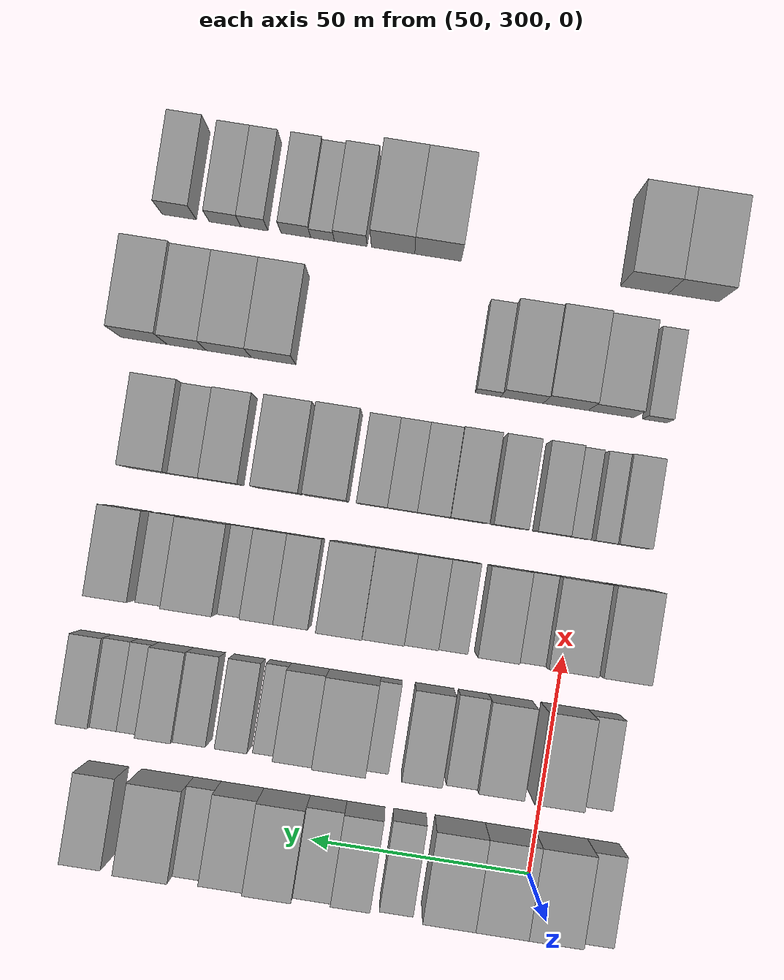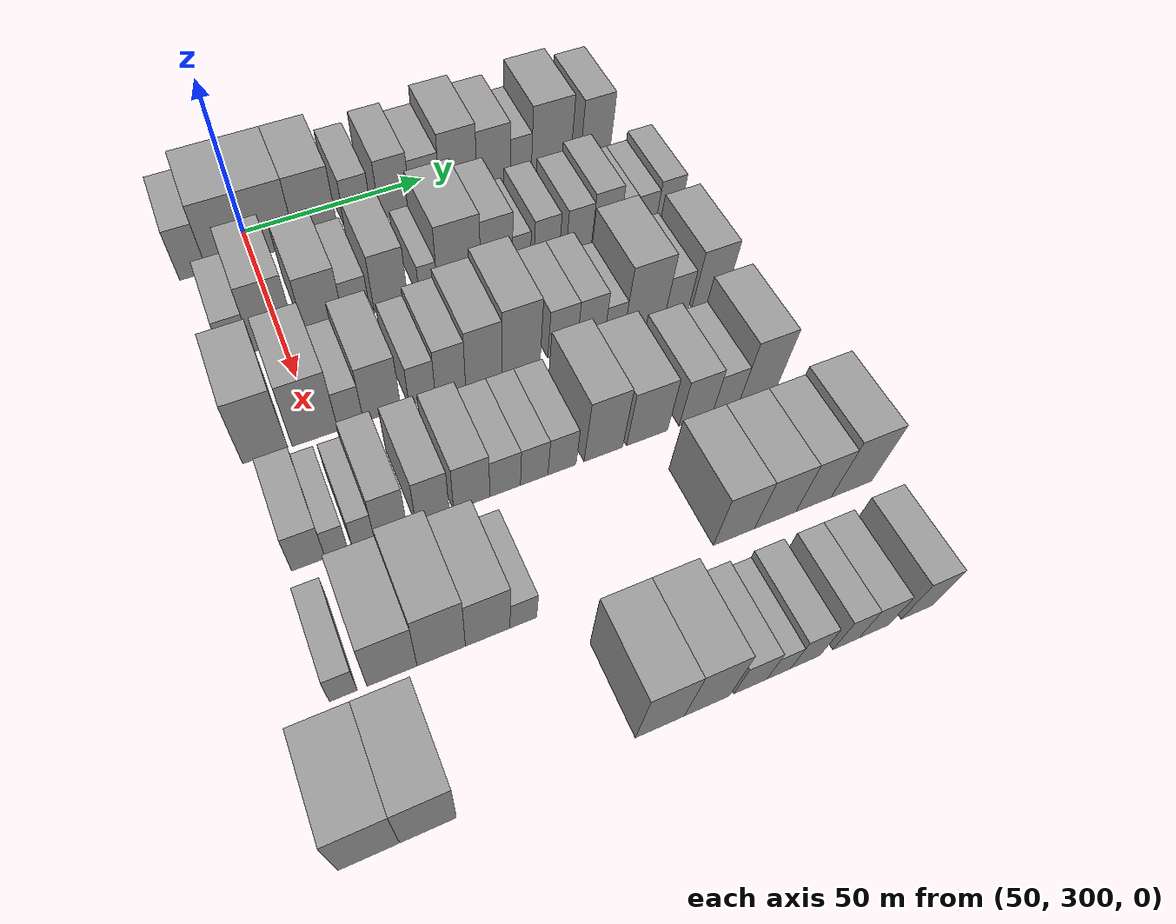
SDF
<sdf version="1.6">
 <world name="default">
  <model name="building_92">
   <static>1</static>
   <pose>50.0000 284.5388 0 0.000000 0.000000 0.000000</pose>
   <link name="link">
    <pose>0 0 9.00 0 0 0</pose>
    <collision name="collision"><geometry><box><size>20.0000 7.2180 18.0000</size></box></geometry></collision>
    <visual name="visual">
     <cast_shadows>0</cast_shadows>
     <geometry><box><size>20.0000 7.2180 18.0000</size></box></geometry>
     <material>
      <script>
       <uri>model://grey_wall/materials/scripts</uri>
       <uri>model://grey_wall/materials/textures</uri>
       <name>vrc/grey_wall</name>
      </script>
     </material>
    </visual>
   </link>
  </model>
  <model name="building_93">
   <static>1</static>
   <pose>50.0000 294.1135 0 0.000000 0.000000 0.000000</pose>
   <link name="link">
    <pose>0 0 12.00 0 0 0</pose>
    <collision name="collision"><geometry><box><size>20.0000 11.9313 24.0000</size></box></geometry></collision>
    <visual name="visual">
     <cast_shadows>0</cast_shadows>
     <geometry><box><size>20.0000 11.9313 24.0000</size></box></geometry>
     <material>
      <script>
       <uri>model://grey_wall/materials/scripts</uri>
       <uri>model://grey_wall/materials/textures</uri>
       <name>vrc/grey_wall</name>
      </script>
     </material>
    </visual>
   </link>
  </model>
  <model name="building_94">
   <static>1</static>
   <pose>50.0000 305.8453 0 0.000000 0.000000 0.000000</pose>
   <link name="link">
    <pose>0 0 12.00 0 0 0</pose>
    <collision name="collision"><geometry><box><size>20.0000 11.5323 24.0000</size></box></geometry></collision>
    <visual name="visual">
     <cast_shadows>0</cast_shadows>
     <geometry><box><size>20.0000 11.5323 24.0000</size></box></geometry>
     <material>
      <script>
       <uri>model://grey_wall/materials/scripts</uri>
       <uri>model://grey_wall/materials/textures</uri>
       <name>vrc/grey_wall</name>
      </script>
     </material>
    </visual>
   </link>
  </model>
  <model name="building_95">
   <static>1</static>
   <pose>50.0000 317.3767 0 0.000000 0.000000 0.000000</pose>
   <link name="link">
    <pose>0 0 12.00 0 0 0</pose>
    <collision name="collision"><geometry><box><size>20.0000 11.5306 24.0000</size></box></geometry></collision>
    <visual name="visual">
     <cast_shadows>0</cast_shadows>
     <geometry><box><size>20.0000 11.5306 24.0000</size></box></geometry>
     <material>
      <script>
       <uri>model://grey_wall/materials/scripts</uri>
       <uri>model://grey_wall/materials/textures</uri>
       <name>vrc/grey_wall</name>
      </script>
     </material>
    </visual>
   </link>
  </model>
  <model name="building_96">
   <static>1</static>
   <pose>50.0000 328.8717 0 0.000000 0.000000 0.000000</pose>
   <link name="link">
    <pose>0 0 9.00 0 0 0</pose>
    <collision name="collision"><geometry><box><size>20.0000 7.4594 18.0000</size></box></geometry></collision>
    <visual name="visual">
     <cast_shadows>0</cast_shadows>
     <geometry><box><size>20.0000 7.4594 18.0000</size></box></geometry>
     <material>
      <script>
       <uri>model://grey_wall/materials/scripts</uri>
       <uri>model://grey_wall/materials/textures</uri>
       <name>vrc/grey_wall</name>
      </script>
     </material>
    </visual>
   </link>
  </model>
  <model name="building_97">
   <static>1</static>
   <pose>50.0000 338.9504 0 0.000000 0.000000 0.000000</pose>
   <link name="link">
    <pose>0 0 10.50 0 0 0</pose>
    <collision name="collision"><geometry><box><size>20.0000 8.6980 21.0000</size></box></geometry></collision>
    <visual name="visual">
     <cast_shadows>0</cast_shadows>
     <geometry><box><size>20.0000 8.6980 21.0000</size></box></geometry>
     <material>
      <script>
       <uri>model://grey_wall/materials/scripts</uri>
       <uri>model://grey_wall/materials/textures</uri>
       <name>vrc/grey_wall</name>
      </script>
     </material>
    </visual>
   </link>
  </model>
  <model name="building_98">
   <static>1</static>
   <pose>50.0000 347.5077 0 0.000000 0.000000 0.000000</pose>
   <link name="link">
    <pose>0 0 9.00 0 0 0</pose>
    <collision name="collision"><geometry><box><size>20.0000 8.4166 18.0000</size></box></geometry></collision>
    <visual name="visual">
     <cast_shadows>0</cast_shadows>
     <geometry><box><size>20.0000 8.4166 18.0000</size></box></geometry>
     <material>
      <script>
       <uri>model://grey_wall/materials/scripts</uri>
       <uri>model://grey_wall/materials/textures</uri>
       <name>vrc/grey_wall</name>
      </script>
     </material>
    </visual>
   </link>
  </model>
  <model name="building_99">
   <static>1</static>
   <pose>50.0000 357.0452 0 0.000000 0.000000 0.000000</pose>
   <link name="link">
    <pose>0 0 12.00 0 0 0</pose>
    <collision name="collision"><geometry><box><size>20.0000 10.6584 24.0000</size></box></geometry></collision>
    <visual name="visual">
     <cast_shadows>0</cast_shadows>
     <geometry><box><size>20.0000 10.6584 24.0000</size></box></geometry>
     <material>
      <script>
       <uri>model://grey_wall/materials/scripts</uri>
       <uri>model://grey_wall/materials/textures</uri>
       <name>vrc/grey_wall</name>
      </script>
     </material>
    </visual>
   </link>
  </model>
  <model name="building_100">
   <static>1</static>
   <pose>50.0000 367.2842 0 0.000000 0.000000 0.000000</pose>
   <link name="link">
    <pose>0 0 10.50 0 0 0</pose>
    <collision name="collision"><geometry><box><size>20.0000 9.8195 21.0000</size></box></geometry></collision>
    <visual name="visual">
     <cast_shadows>0</cast_shadows>
     <geometry><box><size>20.0000 9.8195 21.0000</size></box></geometry>
     <material>
      <script>
       <uri>model://grey_wall/materials/scripts</uri>
       <uri>model://grey_wall/materials/textures</uri>
       <name>vrc/grey_wall</name>
      </script>
     </material>
    </visual>
   </link>
  </model>
  <model name="building_101">
   <static>1</static>
   <pose>50.0000 375.3558 0 0.000000 0.000000 0.000000</pose>
   <link name="link">
    <pose>0 0 7.50 0 0 0</pose>
    <collision name="collision"><geometry><box><size>20.0000 6.3237 15.0000</size></box></geometry></collision>
    <visual name="visual">
     <cast_shadows>0</cast_shadows>
     <geometry><box><size>20.0000 6.3237 15.0000</size></box></geometry>
     <material>
      <script>
       <uri>model://grey_wall/materials/scripts</uri>
       <uri>model://grey_wall/materials/textures</uri>
       <name>vrc/grey_wall</name>
      </script>
     </material>
    </visual>
   </link>
  </model>
  <model name="building_102">
   <static>1</static>
   <pose>50.0000 384.4923 0 0.000000 0.000000 0.000000</pose>
   <link name="link">
    <pose>0 0 12.00 0 0 0</pose>
    <collision name="collision"><geometry><box><size>20.0000 11.9492 24.0000</size></box></geometry></collision>
    <visual name="visual">
     <cast_shadows>0</cast_shadows>
     <geometry><box><size>20.0000 11.9492 24.0000</size></box></geometry>
     <material>
      <script>
       <uri>model://grey_wall/materials/scripts</uri>
       <uri>model://grey_wall/materials/textures</uri>
       <name>vrc/grey_wall</name>
      </script>
     </material>
    </visual>
   </link>
  </model>
  <model name="building_103">
   <static>1</static>
   <pose>50.0000 398.0509 0 0.000000 0.000000 0.000000</pose>
   <link name="link">
    <pose>0 0 10.50 0 0 0</pose>
    <collision name="collision"><geometry><box><size>20.0000 9.1679 21.0000</size></box></geometry></collision>
    <visual name="visual">
     <cast_shadows>0</cast_shadows>
     <geometry><box><size>20.0000 9.1679 21.0000</size></box></geometry>
     <material>
      <script>
       <uri>model://grey_wall/materials/scripts</uri>
       <uri>model://grey_wall/materials/textures</uri>
       <name>vrc/grey_wall</name>
      </script>
     </material>
    </visual>
   </link>
  </model>
  <model name="building_203">
   <static>1</static>
   <pose>79.0000 288.9813 0 0.000000 0.000000 0.000000</pose>
   <link name="link">
    <pose>0 0 7.50 0 0 0</pose>
    <collision name="collision"><geometry><box><size>20.0000 7.0840 15.0000</size></box></geometry></collision>
    <visual name="visual">
     <cast_shadows>0</cast_shadows>
     <geometry><box><size>20.0000 7.0840 15.0000</size></box></geometry>
     <material>
      <script>
       <uri>model://grey_wall/materials/scripts</uri>
       <uri>model://grey_wall/materials/textures</uri>
       <name>vrc/grey_wall</name>
      </script>
     </material>
    </visual>
   </link>
  </model>
  <model name="building_204">
   <static>1</static>
   <pose>79.0000 297.9540 0 0.000000 0.000000 0.000000</pose>
   <link name="link">
    <pose>0 0 12.00 0 0 0</pose>
    <collision name="collision"><geometry><box><size>20.0000 10.8613 24.0000</size></box></geometry></collision>
    <visual name="visual">
     <cast_shadows>0</cast_shadows>
     <geometry><box><size>20.0000 10.8613 24.0000</size></box></geometry>
     <material>
      <script>
       <uri>model://grey_wall/materials/scripts</uri>
       <uri>model://grey_wall/materials/textures</uri>
       <name>vrc/grey_wall</name>
      </script>
     </material>
    </visual>
   </link>
  </model>
  <model name="building_205">
   <static>1</static>
   <pose>79.0000 310.3971 0 0.000000 0.000000 0.000000</pose>
   <link name="link">
    <pose>0 0 10.50 0 0 0</pose>
    <collision name="collision"><geometry><box><size>20.0000 10.0249 21.0000</size></box></geometry></collision>
    <visual name="visual">
     <cast_shadows>0</cast_shadows>
     <geometry><box><size>20.0000 10.0249 21.0000</size></box></geometry>
     <material>
      <script>
       <uri>model://grey_wall/materials/scripts</uri>
       <uri>model://grey_wall/materials/textures</uri>
       <name>vrc/grey_wall</name>
      </script>
     </material>
    </visual>
   </link>
  </model>
  <model name="building_206">
   <static>1</static>
   <pose>79.0000 318.8785 0 0.000000 0.000000 0.000000</pose>
   <link name="link">
    <pose>0 0 7.50 0 0 0</pose>
    <collision name="collision"><geometry><box><size>20.0000 6.9378 15.0000</size></box></geometry></collision>
    <visual name="visual">
     <cast_shadows>0</cast_shadows>
     <geometry><box><size>20.0000 6.9378 15.0000</size></box></geometry>
     <material>
      <script>
       <uri>model://grey_wall/materials/scripts</uri>
       <uri>model://grey_wall/materials/textures</uri>
       <name>vrc/grey_wall</name>
      </script>
     </material>
    </visual>
   </link>
  </model>
  <model name="building_207">
   <static>1</static>
   <pose>79.0000 327.7746 0 0.000000 0.000000 0.000000</pose>
   <link name="link">
    <pose>0 0 10.50 0 0 0</pose>
    <collision name="collision"><geometry><box><size>20.0000 8.8544 21.0000</size></box></geometry></collision>
    <visual name="visual">
     <cast_shadows>0</cast_shadows>
     <geometry><box><size>20.0000 8.8544 21.0000</size></box></geometry>
     <material>
      <script>
       <uri>model://grey_wall/materials/scripts</uri>
       <uri>model://grey_wall/materials/textures</uri>
       <name>vrc/grey_wall</name>
      </script>
     </material>
    </visual>
   </link>
  </model>
  <model name="building_208">
   <static>1</static>
   <pose>79.0000 337.6482 0 0.000000 0.000000 0.000000</pose>
   <link name="link">
    <pose>0 0 6.00 0 0 0</pose>
    <collision name="collision"><geometry><box><size>20.0000 4.8928 12.0000</size></box></geometry></collision>
    <visual name="visual">
     <cast_shadows>0</cast_shadows>
     <geometry><box><size>20.0000 4.8928 12.0000</size></box></geometry>
     <material>
      <script>
       <uri>model://grey_wall/materials/scripts</uri>
       <uri>model://grey_wall/materials/textures</uri>
       <name>vrc/grey_wall</name>
      </script>
     </material>
    </visual>
   </link>
  </model>
  <model name="building_209">
   <static>1</static>
   <pose>79.0000 345.9534 0 0.000000 0.000000 0.000000</pose>
   <link name="link">
    <pose>0 0 12.00 0 0 0</pose>
    <collision name="collision"><geometry><box><size>20.0000 11.7176 24.0000</size></box></geometry></collision>
    <visual name="visual">
     <cast_shadows>0</cast_shadows>
     <geometry><box><size>20.0000 11.7176 24.0000</size></box></geometry>
     <material>
      <script>
       <uri>model://grey_wall/materials/scripts</uri>
       <uri>model://grey_wall/materials/textures</uri>
       <name>vrc/grey_wall</name>
      </script>
     </material>
    </visual>
   </link>
  </model>
  <model name="building_210">
   <static>1</static>
   <pose>79.0000 356.1618 0 0.000000 0.000000 0.000000</pose>
   <link name="link">
    <pose>0 0 10.50 0 0 0</pose>
    <collision name="collision"><geometry><box><size>20.0000 8.6993 21.0000</size></box></geometry></collision>
    <visual name="visual">
     <cast_shadows>0</cast_shadows>
     <geometry><box><size>20.0000 8.6993 21.0000</size></box></geometry>
     <material>
      <script>
       <uri>model://grey_wall/materials/scripts</uri>
       <uri>model://grey_wall/materials/textures</uri>
       <name>vrc/grey_wall</name>
      </script>
     </material>
    </visual>
   </link>
  </model>
  <model name="building_211">
   <static>1</static>
   <pose>79.0000 363.0299 0 0.000000 0.000000 0.000000</pose>
   <link name="link">
    <pose>0 0 6.00 0 0 0</pose>
    <collision name="collision"><geometry><box><size>20.0000 5.0368 12.0000</size></box></geometry></collision>
    <visual name="visual">
     <cast_shadows>0</cast_shadows>
     <geometry><box><size>20.0000 5.0368 12.0000</size></box></geometry>
     <material>
      <script>
       <uri>model://grey_wall/materials/scripts</uri>
       <uri>model://grey_wall/materials/textures</uri>
       <name>vrc/grey_wall</name>
      </script>
     </material>
    </visual>
   </link>
  </model>
  <model name="building_212">
   <static>1</static>
   <pose>79.0000 370.1549 0 0.000000 0.000000 0.000000</pose>
   <link name="link">
    <pose>0 0 7.50 0 0 0</pose>
    <collision name="collision"><geometry><box><size>20.0000 7.2132 15.0000</size></box></geometry></collision>
    <visual name="visual">
     <cast_shadows>0</cast_shadows>
     <geometry><box><size>20.0000 7.2132 15.0000</size></box></geometry>
     <material>
      <script>
       <uri>model://grey_wall/materials/scripts</uri>
       <uri>model://grey_wall/materials/textures</uri>
       <name>vrc/grey_wall</name>
      </script>
     </material>
    </visual>
   </link>
  </model>
  <model name="building_213">
   <static>1</static>
   <pose>79.0000 379.4140 0 0.000000 0.000000 0.000000</pose>
   <link name="link">
    <pose>0 0 7.50 0 0 0</pose>
    <collision name="collision"><geometry><box><size>20.0000 7.3052 15.0000</size></box></geometry></collision>
    <visual name="visual">
     <cast_shadows>0</cast_shadows>
     <geometry><box><size>20.0000 7.3052 15.0000</size></box></geometry>
     <material>
      <script>
       <uri>model://grey_wall/materials/scripts</uri>
       <uri>model://grey_wall/materials/textures</uri>
       <name>vrc/grey_wall</name>
      </script>
     </material>
    </visual>
   </link>
  </model>
  <model name="building_214">
   <static>1</static>
   <pose>79.0000 387.0411 0 0.000000 0.000000 0.000000</pose>
   <link name="link">
    <pose>0 0 9.00 0 0 0</pose>
    <collision name="collision"><geometry><box><size>20.0000 7.9490 18.0000</size></box></geometry></collision>
    <visual name="visual">
     <cast_shadows>0</cast_shadows>
     <geometry><box><size>20.0000 7.9490 18.0000</size></box></geometry>
     <material>
      <script>
       <uri>model://grey_wall/materials/scripts</uri>
       <uri>model://grey_wall/materials/textures</uri>
       <name>vrc/grey_wall</name>
      </script>
     </material>
    </visual>
   </link>
  </model>
  <model name="building_215">
   <static>1</static>
   <pose>79.0000 393.4837 0 0.000000 0.000000 0.000000</pose>
   <link name="link">
    <pose>0 0 6.00 0 0 0</pose>
    <collision name="collision"><geometry><box><size>20.0000 4.9362 12.0000</size></box></geometry></collision>
    <visual name="visual">
     <cast_shadows>0</cast_shadows>
     <geometry><box><size>20.0000 4.9362 12.0000</size></box></geometry>
     <material>
      <script>
       <uri>model://grey_wall/materials/scripts</uri>
       <uri>model://grey_wall/materials/textures</uri>
       <name>vrc/grey_wall</name>
      </script>
     </material>
    </visual>
   </link>
  </model>
  <model name="building_216">
   <static>1</static>
   <pose>79.0000 398.9422 0 0.000000 0.000000 0.000000</pose>
   <link name="link">
    <pose>0 0 6.00 0 0 0</pose>
    <collision name="collision"><geometry><box><size>20.0000 5.9808 12.0000</size></box></geometry></collision>
    <visual name="visual">
     <cast_shadows>0</cast_shadows>
     <geometry><box><size>20.0000 5.9808 12.0000</size></box></geometry>
     <material>
      <script>
       <uri>model://grey_wall/materials/scripts</uri>
       <uri>model://grey_wall/materials/textures</uri>
       <name>vrc/grey_wall</name>
      </script>
     </material>
    </visual>
   </link>
  </model>
  <model name="building_217">
   <static>1</static>
   <pose>79.0000 405.4830 0 0.000000 0.000000 0.000000</pose>
   <link name="link">
    <pose>0 0 7.50 0 0 0</pose>
    <collision name="collision"><geometry><box><size>20.0000 7.1008 15.0000</size></box></geometry></collision>
    <visual name="visual">
     <cast_shadows>0</cast_shadows>
     <geometry><box><size>20.0000 7.1008 15.0000</size></box></geometry>
     <material>
      <script>
       <uri>model://grey_wall/materials/scripts</uri>
       <uri>model://grey_wall/materials/textures</uri>
       <name>vrc/grey_wall</name>
      </script>
     </material>
    </visual>
   </link>
  </model>
  <model name="building_319">
   <static>1</static>
   <pose>108.0000 287.7044 0 0.000000 0.000000 0.000000</pose>
   <link name="link">
    <pose>0 0 12.00 0 0 0</pose>
    <collision name="collision"><geometry><box><size>20.0000 10.5124 24.0000</size></box></geometry></collision>
    <visual name="visual">
     <cast_shadows>0</cast_shadows>
     <geometry><box><size>20.0000 10.5124 24.0000</size></box></geometry>
     <material>
      <script>
       <uri>model://grey_wall/materials/scripts</uri>
       <uri>model://grey_wall/materials/textures</uri>
       <name>vrc/grey_wall</name>
      </script>
     </material>
    </visual>
   </link>
  </model>
  <model name="building_320">
   <static>1</static>
   <pose>108.0000 299.3896 0 0.000000 0.000000 0.000000</pose>
   <link name="link">
    <pose>0 0 12.00 0 0 0</pose>
    <collision name="collision"><geometry><box><size>20.0000 10.8579 24.0000</size></box></geometry></collision>
    <visual name="visual">
     <cast_shadows>0</cast_shadows>
     <geometry><box><size>20.0000 10.8579 24.0000</size></box></geometry>
     <material>
      <script>
       <uri>model://grey_wall/materials/scripts</uri>
       <uri>model://grey_wall/materials/textures</uri>
       <name>vrc/grey_wall</name>
      </script>
     </material>
    </visual>
   </link>
  </model>
  <model name="building_321">
   <static>1</static>
   <pose>108.0000 307.9055 0 0.000000 0.000000 0.000000</pose>
   <link name="link">
    <pose>0 0 7.50 0 0 0</pose>
    <collision name="collision"><geometry><box><size>20.0000 6.1739 15.0000</size></box></geometry></collision>
    <visual name="visual">
     <cast_shadows>0</cast_shadows>
     <geometry><box><size>20.0000 6.1739 15.0000</size></box></geometry>
     <material>
      <script>
       <uri>model://grey_wall/materials/scripts</uri>
       <uri>model://grey_wall/materials/textures</uri>
       <name>vrc/grey_wall</name>
      </script>
     </material>
    </visual>
   </link>
  </model>
  <model name="building_322">
   <static>1</static>
   <pose>108.0000 315.5460 0 0.000000 0.000000 0.000000</pose>
   <link name="link">
    <pose>0 0 10.50 0 0 0</pose>
    <collision name="collision"><geometry><box><size>20.0000 9.1071 21.0000</size></box></geometry></collision>
    <visual name="visual">
     <cast_shadows>0</cast_shadows>
     <geometry><box><size>20.0000 9.1071 21.0000</size></box></geometry>
     <material>
      <script>
       <uri>model://grey_wall/materials/scripts</uri>
       <uri>model://grey_wall/materials/textures</uri>
       <name>vrc/grey_wall</name>
      </script>
     </material>
    </visual>
   </link>
  </model>
  <model name="building_323">
   <static>1</static>
   <pose>108.0000 325.3731 0 0.000000 0.000000 0.000000</pose>
   <link name="link">
    <pose>0 0 7.50 0 0 0</pose>
    <collision name="collision"><geometry><box><size>20.0000 6.5469 15.0000</size></box></geometry></collision>
    <visual name="visual">
     <cast_shadows>0</cast_shadows>
     <geometry><box><size>20.0000 6.5469 15.0000</size></box></geometry>
     <material>
      <script>
       <uri>model://grey_wall/materials/scripts</uri>
       <uri>model://grey_wall/materials/textures</uri>
       <name>vrc/grey_wall</name>
      </script>
     </material>
    </visual>
   </link>
  </model>
  <model name="building_324">
   <static>1</static>
   <pose>108.0000 332.4349 0 0.000000 0.000000 0.000000</pose>
   <link name="link">
    <pose>0 0 9.00 0 0 0</pose>
    <collision name="collision"><geometry><box><size>20.0000 7.5768 18.0000</size></box></geometry></collision>
    <visual name="visual">
     <cast_shadows>0</cast_shadows>
     <geometry><box><size>20.0000 7.5768 18.0000</size></box></geometry>
     <material>
      <script>
       <uri>model://grey_wall/materials/scripts</uri>
       <uri>model://grey_wall/materials/textures</uri>
       <name>vrc/grey_wall</name>
      </script>
     </material>
    </visual>
   </link>
  </model>
  <model name="building_325">
   <static>1</static>
   <pose>108.0000 340.8325 0 0.000000 0.000000 0.000000</pose>
   <link name="link">
    <pose>0 0 10.50 0 0 0</pose>
    <collision name="collision"><geometry><box><size>20.0000 9.2183 21.0000</size></box></geometry></collision>
    <visual name="visual">
     <cast_shadows>0</cast_shadows>
     <geometry><box><size>20.0000 9.2183 21.0000</size></box></geometry>
     <material>
      <script>
       <uri>model://grey_wall/materials/scripts</uri>
       <uri>model://grey_wall/materials/textures</uri>
       <name>vrc/grey_wall</name>
      </script>
     </material>
    </visual>
   </link>
  </model>
  <model name="building_326">
   <static>1</static>
   <pose>108.0000 350.4680 0 0.000000 0.000000 0.000000</pose>
   <link name="link">
    <pose>0 0 12.00 0 0 0</pose>
    <collision name="collision"><geometry><box><size>20.0000 10.0527 24.0000</size></box></geometry></collision>
    <visual name="visual">
     <cast_shadows>0</cast_shadows>
     <geometry><box><size>20.0000 10.0527 24.0000</size></box></geometry>
     <material>
      <script>
       <uri>model://grey_wall/materials/scripts</uri>
       <uri>model://grey_wall/materials/textures</uri>
       <name>vrc/grey_wall</name>
      </script>
     </material>
    </visual>
   </link>
  </model>
  <model name="building_327">
   <static>1</static>
   <pose>108.0000 361.3223 0 0.000000 0.000000 0.000000</pose>
   <link name="link">
    <pose>0 0 9.00 0 0 0</pose>
    <collision name="collision"><geometry><box><size>20.0000 7.6559 18.0000</size></box></geometry></collision>
    <visual name="visual">
     <cast_shadows>0</cast_shadows>
     <geometry><box><size>20.0000 7.6559 18.0000</size></box></geometry>
     <material>
      <script>
       <uri>model://grey_wall/materials/scripts</uri>
       <uri>model://grey_wall/materials/textures</uri>
       <name>vrc/grey_wall</name>
      </script>
     </material>
    </visual>
   </link>
  </model>
  <model name="building_328">
   <static>1</static>
   <pose>108.0000 368.8560 0 0.000000 0.000000 0.000000</pose>
   <link name="link">
    <pose>0 0 9.00 0 0 0</pose>
    <collision name="collision"><geometry><box><size>20.0000 7.4115 18.0000</size></box></geometry></collision>
    <visual name="visual">
     <cast_shadows>0</cast_shadows>
     <geometry><box><size>20.0000 7.4115 18.0000</size></box></geometry>
     <material>
      <script>
       <uri>model://grey_wall/materials/scripts</uri>
       <uri>model://grey_wall/materials/textures</uri>
       <name>vrc/grey_wall</name>
      </script>
     </material>
    </visual>
   </link>
  </model>
  <model name="building_329">
   <static>1</static>
   <pose>108.0000 375.2865 0 0.000000 0.000000 0.000000</pose>
   <link name="link">
    <pose>0 0 6.00 0 0 0</pose>
    <collision name="collision"><geometry><box><size>20.0000 5.4496 12.0000</size></box></geometry></collision>
    <visual name="visual">
     <cast_shadows>0</cast_shadows>
     <geometry><box><size>20.0000 5.4496 12.0000</size></box></geometry>
     <material>
      <script>
       <uri>model://grey_wall/materials/scripts</uri>
       <uri>model://grey_wall/materials/textures</uri>
       <name>vrc/grey_wall</name>
      </script>
     </material>
    </visual>
   </link>
  </model>
  <model name="building_330">
   <static>1</static>
   <pose>108.0000 383.5953 0 0.000000 0.000000 0.000000</pose>
   <link name="link">
    <pose>0 0 12.00 0 0 0</pose>
    <collision name="collision"><geometry><box><size>20.0000 11.1680 24.0000</size></box></geometry></collision>
    <visual name="visual">
     <cast_shadows>0</cast_shadows>
     <geometry><box><size>20.0000 11.1680 24.0000</size></box></geometry>
     <material>
      <script>
       <uri>model://grey_wall/materials/scripts</uri>
       <uri>model://grey_wall/materials/textures</uri>
       <name>vrc/grey_wall</name>
      </script>
     </material>
    </visual>
   </link>
  </model>
  <model name="building_331">
   <static>1</static>
   <pose>108.0000 392.5184 0 0.000000 0.000000 0.000000</pose>
   <link name="link">
    <pose>0 0 7.50 0 0 0</pose>
    <collision name="collision"><geometry><box><size>20.0000 6.6781 15.0000</size></box></geometry></collision>
    <visual name="visual">
     <cast_shadows>0</cast_shadows>
     <geometry><box><size>20.0000 6.6781 15.0000</size></box></geometry>
     <material>
      <script>
       <uri>model://grey_wall/materials/scripts</uri>
       <uri>model://grey_wall/materials/textures</uri>
       <name>vrc/grey_wall</name>
      </script>
     </material>
    </visual>
   </link>
  </model>
  <model name="building_332">
   <static>1</static>
   <pose>108.0000 401.6512 0 0.000000 0.000000 0.000000</pose>
   <link name="link">
    <pose>0 0 10.50 0 0 0</pose>
    <collision name="collision"><geometry><box><size>20.0000 9.5876 21.0000</size></box></geometry></collision>
    <visual name="visual">
     <cast_shadows>0</cast_shadows>
     <geometry><box><size>20.0000 9.5876 21.0000</size></box></geometry>
     <material>
      <script>
       <uri>model://grey_wall/materials/scripts</uri>
       <uri>model://grey_wall/materials/textures</uri>
       <name>vrc/grey_wall</name>
      </script>
     </material>
    </visual>
   </link>
  </model>
  <model name="building_425">
   <static>1</static>
   <pose>137.0000 289.2545 0 0.000000 0.000000 0.000000</pose>
   <link name="link">
    <pose>0 0 7.50 0 0 0</pose>
    <collision name="collision"><geometry><box><size>20.0000 7.3908 15.0000</size></box></geometry></collision>
    <visual name="visual">
     <cast_shadows>0</cast_shadows>
     <geometry><box><size>20.0000 7.3908 15.0000</size></box></geometry>
     <material>
      <script>
       <uri>model://grey_wall/materials/scripts</uri>
       <uri>model://grey_wall/materials/textures</uri>
       <name>vrc/grey_wall</name>
      </script>
     </material>
    </visual>
   </link>
  </model>
  <model name="building_426">
   <static>1</static>
   <pose>137.0000 295.4547 0 0.000000 0.000000 0.000000</pose>
   <link name="link">
    <pose>0 0 6.00 0 0 0</pose>
    <collision name="collision"><geometry><box><size>20.0000 5.0097 12.0000</size></box></geometry></collision>
    <visual name="visual">
     <cast_shadows>0</cast_shadows>
     <geometry><box><size>20.0000 5.0097 12.0000</size></box></geometry>
     <material>
      <script>
       <uri>model://grey_wall/materials/scripts</uri>
       <uri>model://grey_wall/materials/textures</uri>
       <name>vrc/grey_wall</name>
      </script>
     </material>
    </visual>
   </link>
  </model>
  <model name="building_427">
   <static>1</static>
   <pose>137.0000 301.4380 0 0.000000 0.000000 0.000000</pose>
   <link name="link">
    <pose>0 0 6.00 0 0 0</pose>
    <collision name="collision"><geometry><box><size>20.0000 4.9570 12.0000</size></box></geometry></collision>
    <visual name="visual">
     <cast_shadows>0</cast_shadows>
     <geometry><box><size>20.0000 4.9570 12.0000</size></box></geometry>
     <material>
      <script>
       <uri>model://grey_wall/materials/scripts</uri>
       <uri>model://grey_wall/materials/textures</uri>
       <name>vrc/grey_wall</name>
      </script>
     </material>
    </visual>
   </link>
  </model>
  <model name="building_428">
   <static>1</static>
   <pose>137.0000 307.5940 0 0.000000 0.000000 0.000000</pose>
   <link name="link">
    <pose>0 0 9.00 0 0 0</pose>
    <collision name="collision"><geometry><box><size>20.0000 7.3550 18.0000</size></box></geometry></collision>
    <visual name="visual">
     <cast_shadows>0</cast_shadows>
     <geometry><box><size>20.0000 7.3550 18.0000</size></box></geometry>
     <material>
      <script>
       <uri>model://grey_wall/materials/scripts</uri>
       <uri>model://grey_wall/materials/textures</uri>
       <name>vrc/grey_wall</name>
      </script>
     </material>
    </visual>
   </link>
  </model>
  <model name="building_429">
   <static>1</static>
   <pose>137.0000 317.1314 0 0.000000 0.000000 0.000000</pose>
   <link name="link">
    <pose>0 0 9.00 0 0 0</pose>
    <collision name="collision"><geometry><box><size>20.0000 7.7197 18.0000</size></box></geometry></collision>
    <visual name="visual">
     <cast_shadows>0</cast_shadows>
     <geometry><box><size>20.0000 7.7197 18.0000</size></box></geometry>
     <material>
      <script>
       <uri>model://grey_wall/materials/scripts</uri>
       <uri>model://grey_wall/materials/textures</uri>
       <name>vrc/grey_wall</name>
      </script>
     </material>
    </visual>
   </link>
  </model>
  <model name="building_430">
   <static>1</static>
   <pose>137.0000 326.2420 0 0.000000 0.000000 0.000000</pose>
   <link name="link">
    <pose>0 0 9.00 0 0 0</pose>
    <collision name="collision"><geometry><box><size>20.0000 8.5014 18.0000</size></box></geometry></collision>
    <visual name="visual">
     <cast_shadows>0</cast_shadows>
     <geometry><box><size>20.0000 8.5014 18.0000</size></box></geometry>
     <material>
      <script>
       <uri>model://grey_wall/materials/scripts</uri>
       <uri>model://grey_wall/materials/textures</uri>
       <name>vrc/grey_wall</name>
      </script>
     </material>
    </visual>
   </link>
  </model>
  <model name="building_431">
   <static>1</static>
   <pose>137.0000 334.1659 0 0.000000 0.000000 0.000000</pose>
   <link name="link">
    <pose>0 0 7.50 0 0 0</pose>
    <collision name="collision"><geometry><box><size>20.0000 7.3465 15.0000</size></box></geometry></collision>
    <visual name="visual">
     <cast_shadows>0</cast_shadows>
     <geometry><box><size>20.0000 7.3465 15.0000</size></box></geometry>
     <material>
      <script>
       <uri>model://grey_wall/materials/scripts</uri>
       <uri>model://grey_wall/materials/textures</uri>
       <name>vrc/grey_wall</name>
      </script>
     </material>
    </visual>
   </link>
  </model>
  <model name="building_432">
   <static>1</static>
   <pose>137.0000 341.1697 0 0.000000 0.000000 0.000000</pose>
   <link name="link">
    <pose>0 0 7.50 0 0 0</pose>
    <collision name="collision"><geometry><box><size>20.0000 6.6610 15.0000</size></box></geometry></collision>
    <visual name="visual">
     <cast_shadows>0</cast_shadows>
     <geometry><box><size>20.0000 6.6610 15.0000</size></box></geometry>
     <material>
      <script>
       <uri>model://grey_wall/materials/scripts</uri>
       <uri>model://grey_wall/materials/textures</uri>
       <name>vrc/grey_wall</name>
      </script>
     </material>
    </visual>
   </link>
  </model>
  <model name="building_433">
   <static>1</static>
   <pose>137.0000 347.9510 0 0.000000 0.000000 0.000000</pose>
   <link name="link">
    <pose>0 0 7.50 0 0 0</pose>
    <collision name="collision"><geometry><box><size>20.0000 6.9015 15.0000</size></box></geometry></collision>
    <visual name="visual">
     <cast_shadows>0</cast_shadows>
     <geometry><box><size>20.0000 6.9015 15.0000</size></box></geometry>
     <material>
      <script>
       <uri>model://grey_wall/materials/scripts</uri>
       <uri>model://grey_wall/materials/textures</uri>
       <name>vrc/grey_wall</name>
      </script>
     </material>
    </visual>
   </link>
  </model>
  <model name="building_434">
   <static>1</static>
   <pose>137.0000 358.2383 0 0.000000 0.000000 0.000000</pose>
   <link name="link">
    <pose>0 0 12.00 0 0 0</pose>
    <collision name="collision"><geometry><box><size>20.0000 9.6731 24.0000</size></box></geometry></collision>
    <visual name="visual">
     <cast_shadows>0</cast_shadows>
     <geometry><box><size>20.0000 9.6731 24.0000</size></box></geometry>
     <material>
      <script>
       <uri>model://grey_wall/materials/scripts</uri>
       <uri>model://grey_wall/materials/textures</uri>
       <name>vrc/grey_wall</name>
      </script>
     </material>
    </visual>
   </link>
  </model>
  <model name="building_435">
   <static>1</static>
   <pose>137.0000 369.3159 0 0.000000 0.000000 0.000000</pose>
   <link name="link">
    <pose>0 0 10.50 0 0 0</pose>
    <collision name="collision"><geometry><box><size>20.0000 10.4820 21.0000</size></box></geometry></collision>
    <visual name="visual">
     <cast_shadows>0</cast_shadows>
     <geometry><box><size>20.0000 10.4820 21.0000</size></box></geometry>
     <material>
      <script>
       <uri>model://grey_wall/materials/scripts</uri>
       <uri>model://grey_wall/materials/textures</uri>
       <name>vrc/grey_wall</name>
      </script>
     </material>
    </visual>
   </link>
  </model>
  <model name="building_436">
   <static>1</static>
   <pose>137.0000 381.9107 0 0.000000 0.000000 0.000000</pose>
   <link name="link">
    <pose>0 0 9.00 0 0 0</pose>
    <collision name="collision"><geometry><box><size>20.0000 8.7077 18.0000</size></box></geometry></collision>
    <visual name="visual">
     <cast_shadows>0</cast_shadows>
     <geometry><box><size>20.0000 8.7077 18.0000</size></box></geometry>
     <material>
      <script>
       <uri>model://grey_wall/materials/scripts</uri>
       <uri>model://grey_wall/materials/textures</uri>
       <name>vrc/grey_wall</name>
      </script>
     </material>
    </visual>
   </link>
  </model>
  <model name="building_437">
   <static>1</static>
   <pose>137.0000 389.7853 0 0.000000 0.000000 0.000000</pose>
   <link name="link">
    <pose>0 0 7.50 0 0 0</pose>
    <collision name="collision"><geometry><box><size>20.0000 7.0414 15.0000</size></box></geometry></collision>
    <visual name="visual">
     <cast_shadows>0</cast_shadows>
     <geometry><box><size>20.0000 7.0414 15.0000</size></box></geometry>
     <material>
      <script>
       <uri>model://grey_wall/materials/scripts</uri>
       <uri>model://grey_wall/materials/textures</uri>
       <name>vrc/grey_wall</name>
      </script>
     </material>
    </visual>
   </link>
  </model>
  <model name="building_438">
   <static>1</static>
   <pose>137.0000 398.2998 0 0.000000 0.000000 0.000000</pose>
   <link name="link">
    <pose>0 0 12.00 0 0 0</pose>
    <collision name="collision"><geometry><box><size>20.0000 9.9876 24.0000</size></box></geometry></collision>
    <visual name="visual">
     <cast_shadows>0</cast_shadows>
     <geometry><box><size>20.0000 9.9876 24.0000</size></box></geometry>
     <material>
      <script>
       <uri>model://grey_wall/materials/scripts</uri>
       <uri>model://grey_wall/materials/textures</uri>
       <name>vrc/grey_wall</name>
      </script>
     </material>
    </visual>
   </link>
  </model>
  <model name="building_542">
   <static>1</static>
   <pose>166.0000 287.7403 0 0.000000 0.000000 0.000000</pose>
   <link name="link">
    <pose>0 0 6.00 0 0 0</pose>
    <collision name="collision"><geometry><box><size>20.0000 5.6956 12.0000</size></box></geometry></collision>
    <visual name="visual">
     <cast_shadows>0</cast_shadows>
     <geometry><box><size>20.0000 5.6956 12.0000</size></box></geometry>
     <material>
      <script>
       <uri>model://grey_wall/materials/scripts</uri>
       <uri>model://grey_wall/materials/textures</uri>
       <name>vrc/grey_wall</name>
      </script>
     </material>
    </visual>
   </link>
  </model>
  <model name="building_543">
   <static>1</static>
   <pose>166.0000 297.8125 0 0.000000 0.000000 0.000000</pose>
   <link name="link">
    <pose>0 0 10.50 0 0 0</pose>
    <collision name="collision"><geometry><box><size>20.0000 10.4488 21.0000</size></box></geometry></collision>
    <visual name="visual">
     <cast_shadows>0</cast_shadows>
     <geometry><box><size>20.0000 10.4488 21.0000</size></box></geometry>
     <material>
      <script>
       <uri>model://grey_wall/materials/scripts</uri>
       <uri>model://grey_wall/materials/textures</uri>
       <name>vrc/grey_wall</name>
      </script>
     </material>
    </visual>
   </link>
  </model>
  <model name="building_544">
   <static>1</static>
   <pose>166.0000 308.1933 0 0.000000 0.000000 0.000000</pose>
   <link name="link">
    <pose>0 0 12.00 0 0 0</pose>
    <collision name="collision"><geometry><box><size>20.0000 10.3128 24.0000</size></box></geometry></collision>
    <visual name="visual">
     <cast_shadows>0</cast_shadows>
     <geometry><box><size>20.0000 10.3128 24.0000</size></box></geometry>
     <material>
      <script>
       <uri>model://grey_wall/materials/scripts</uri>
       <uri>model://grey_wall/materials/textures</uri>
       <name>vrc/grey_wall</name>
      </script>
     </material>
    </visual>
   </link>
  </model>
  <model name="building_545">
   <static>1</static>
   <pose>166.0000 318.1963 0 0.000000 0.000000 0.000000</pose>
   <link name="link">
    <pose>0 0 10.50 0 0 0</pose>
    <collision name="collision"><geometry><box><size>20.0000 9.6932 21.0000</size></box></geometry></collision>
    <visual name="visual">
     <cast_shadows>0</cast_shadows>
     <geometry><box><size>20.0000 9.6932 21.0000</size></box></geometry>
     <material>
      <script>
       <uri>model://grey_wall/materials/scripts</uri>
       <uri>model://grey_wall/materials/textures</uri>
       <name>vrc/grey_wall</name>
      </script>
     </material>
    </visual>
   </link>
  </model>
  <model name="building_546">
   <static>1</static>
   <pose>166.0000 326.0066 0 0.000000 0.000000 0.000000</pose>
   <link name="link">
    <pose>0 0 6.00 0 0 0</pose>
    <collision name="collision"><geometry><box><size>20.0000 5.9272 12.0000</size></box></geometry></collision>
    <visual name="visual">
     <cast_shadows>0</cast_shadows>
     <geometry><box><size>20.0000 5.9272 12.0000</size></box></geometry>
     <material>
      <script>
       <uri>model://grey_wall/materials/scripts</uri>
       <uri>model://grey_wall/materials/textures</uri>
       <name>vrc/grey_wall</name>
      </script>
     </material>
    </visual>
   </link>
  </model>
  <model name="building_547">
   <static>1</static>
   <pose>166.0000 375.2459 0 0.000000 0.000000 0.000000</pose>
   <link name="link">
    <pose>0 0 10.50 0 0 0</pose>
    <collision name="collision"><geometry><box><size>20.0000 10.1838 21.0000</size></box></geometry></collision>
    <visual name="visual">
     <cast_shadows>0</cast_shadows>
     <geometry><box><size>20.0000 10.1838 21.0000</size></box></geometry>
     <material>
      <script>
       <uri>model://grey_wall/materials/scripts</uri>
       <uri>model://grey_wall/materials/textures</uri>
       <name>vrc/grey_wall</name>
      </script>
     </material>
    </visual>
   </link>
  </model>
  <model name="building_548">
   <static>1</static>
   <pose>166.0000 385.4889 0 0.000000 0.000000 0.000000</pose>
   <link name="link">
    <pose>0 0 10.50 0 0 0</pose>
    <collision name="collision"><geometry><box><size>20.0000 10.3022 21.0000</size></box></geometry></collision>
    <visual name="visual">
     <cast_shadows>0</cast_shadows>
     <geometry><box><size>20.0000 10.3022 21.0000</size></box></geometry>
     <material>
      <script>
       <uri>model://grey_wall/materials/scripts</uri>
       <uri>model://grey_wall/materials/textures</uri>
       <name>vrc/grey_wall</name>
      </script>
     </material>
    </visual>
   </link>
  </model>
  <model name="building_549">
   <static>1</static>
   <pose>166.0000 395.1629 0 0.000000 0.000000 0.000000</pose>
   <link name="link">
    <pose>0 0 10.50 0 0 0</pose>
    <collision name="collision"><geometry><box><size>20.0000 9.0458 21.0000</size></box></geometry></collision>
    <visual name="visual">
     <cast_shadows>0</cast_shadows>
     <geometry><box><size>20.0000 9.0458 21.0000</size></box></geometry>
     <material>
      <script>
       <uri>model://grey_wall/materials/scripts</uri>
       <uri>model://grey_wall/materials/textures</uri>
       <name>vrc/grey_wall</name>
      </script>
     </material>
    </visual>
   </link>
  </model>
  <model name="building_550">
   <static>1</static>
   <pose>166.0000 404.9783 0 0.000000 0.000000 0.000000</pose>
   <link name="link">
    <pose>0 0 12.00 0 0 0</pose>
    <collision name="collision"><geometry><box><size>20.0000 10.5851 24.0000</size></box></geometry></collision>
    <visual name="visual">
     <cast_shadows>0</cast_shadows>
     <geometry><box><size>20.0000 10.5851 24.0000</size></box></geometry>
     <material>
      <script>
       <uri>model://grey_wall/materials/scripts</uri>
       <uri>model://grey_wall/materials/textures</uri>
       <name>vrc/grey_wall</name>
      </script>
     </material>
    </visual>
   </link>
  </model>
  <model name="building_651">
   <static>1</static>
   <pose>195.0000 283.3424 0 0.000000 0.000000 0.000000</pose>
   <link name="link">
    <pose>0 0 12.00 0 0 0</pose>
    <collision name="collision"><geometry><box><size>20.0000 11.6580 24.0000</size></box></geometry></collision>
    <visual name="visual">
     <cast_shadows>0</cast_shadows>
     <geometry><box><size>20.0000 11.6580 24.0000</size></box></geometry>
     <material>
      <script>
       <uri>model://grey_wall/materials/scripts</uri>
       <uri>model://grey_wall/materials/textures</uri>
       <name>vrc/grey_wall</name>
      </script>
     </material>
    </visual>
   </link>
  </model>
  <model name="building_652">
   <static>1</static>
   <pose>195.0000 294.6537 0 0.000000 0.000000 0.000000</pose>
   <link name="link">
    <pose>0 0 12.00 0 0 0</pose>
    <collision name="collision"><geometry><box><size>20.0000 10.9646 24.0000</size></box></geometry></collision>
    <visual name="visual">
     <cast_shadows>0</cast_shadows>
     <geometry><box><size>20.0000 10.9646 24.0000</size></box></geometry>
     <material>
      <script>
       <uri>model://grey_wall/materials/scripts</uri>
       <uri>model://grey_wall/materials/textures</uri>
       <name>vrc/grey_wall</name>
      </script>
     </material>
    </visual>
   </link>
  </model>
  <model name="building_653">
   <static>1</static>
   <pose>195.0000 342.0756 0 0.000000 0.000000 0.000000</pose>
   <link name="link">
    <pose>0 0 12.00 0 0 0</pose>
    <collision name="collision"><geometry><box><size>20.0000 10.6264 24.0000</size></box></geometry></collision>
    <visual name="visual">
     <cast_shadows>0</cast_shadows>
     <geometry><box><size>20.0000 10.6264 24.0000</size></box></geometry>
     <material>
      <script>
       <uri>model://grey_wall/materials/scripts</uri>
       <uri>model://grey_wall/materials/textures</uri>
       <name>vrc/grey_wall</name>
      </script>
     </material>
    </visual>
   </link>
  </model>
  <model name="building_654">
   <static>1</static>
   <pose>195.0000 352.3637 0 0.000000 0.000000 0.000000</pose>
   <link name="link">
    <pose>0 0 12.00 0 0 0</pose>
    <collision name="collision"><geometry><box><size>20.0000 9.9497 24.0000</size></box></geometry></collision>
    <visual name="visual">
     <cast_shadows>0</cast_shadows>
     <geometry><box><size>20.0000 9.9497 24.0000</size></box></geometry>
     <material>
      <script>
       <uri>model://grey_wall/materials/scripts</uri>
       <uri>model://grey_wall/materials/textures</uri>
       <name>vrc/grey_wall</name>
      </script>
     </material>
    </visual>
   </link>
  </model>
  <model name="building_655">
   <static>1</static>
   <pose>195.0000 362.0801 0 0.000000 0.000000 0.000000</pose>
   <link name="link">
    <pose>0 0 7.50 0 0 0</pose>
    <collision name="collision"><geometry><box><size>20.0000 7.4832 15.0000</size></box></geometry></collision>
    <visual name="visual">
     <cast_shadows>0</cast_shadows>
     <geometry><box><size>20.0000 7.4832 15.0000</size></box></geometry>
     <material>
      <script>
       <uri>model://grey_wall/materials/scripts</uri>
       <uri>model://grey_wall/materials/textures</uri>
       <name>vrc/grey_wall</name>
      </script>
     </material>
    </visual>
   </link>
  </model>
  <model name="building_656">
   <static>1</static>
   <pose>195.0000 368.5445 0 0.000000 0.000000 0.000000</pose>
   <link name="link">
    <pose>0 0 6.00 0 0 0</pose>
    <collision name="collision"><geometry><box><size>20.0000 5.4457 12.0000</size></box></geometry></collision>
    <visual name="visual">
     <cast_shadows>0</cast_shadows>
     <geometry><box><size>20.0000 5.4457 12.0000</size></box></geometry>
     <material>
      <script>
       <uri>model://grey_wall/materials/scripts</uri>
       <uri>model://grey_wall/materials/textures</uri>
       <name>vrc/grey_wall</name>
      </script>
     </material>
    </visual>
   </link>
  </model>
  <model name="building_657">
   <static>1</static>
   <pose>195.0000 374.6840 0 0.000000 0.000000 0.000000</pose>
   <link name="link">
    <pose>0 0 7.50 0 0 0</pose>
    <collision name="collision"><geometry><box><size>20.0000 6.8332 15.0000</size></box></geometry></collision>
    <visual name="visual">
     <cast_shadows>0</cast_shadows>
     <geometry><box><size>20.0000 6.8332 15.0000</size></box></geometry>
     <material>
      <script>
       <uri>model://grey_wall/materials/scripts</uri>
       <uri>model://grey_wall/materials/textures</uri>
       <name>vrc/grey_wall</name>
      </script>
     </material>
    </visual>
   </link>
  </model>
  <model name="building_658">
   <static>1</static>
   <pose>195.0000 384.1856 0 0.000000 0.000000 0.000000</pose>
   <link name="link">
    <pose>0 0 7.50 0 0 0</pose>
    <collision name="collision"><geometry><box><size>20.0000 6.1700 15.0000</size></box></geometry></collision>
    <visual name="visual">
     <cast_shadows>0</cast_shadows>
     <geometry><box><size>20.0000 6.1700 15.0000</size></box></geometry>
     <material>
      <script>
       <uri>model://grey_wall/materials/scripts</uri>
       <uri>model://grey_wall/materials/textures</uri>
       <name>vrc/grey_wall</name>
      </script>
     </material>
    </visual>
   </link>
  </model>
  <model name="building_659">
   <static>1</static>
   <pose>195.0000 390.9071 0 0.000000 0.000000 0.000000</pose>
   <link name="link">
    <pose>0 0 7.50 0 0 0</pose>
    <collision name="collision"><geometry><box><size>20.0000 7.2730 15.0000</size></box></geometry></collision>
    <visual name="visual">
     <cast_shadows>0</cast_shadows>
     <geometry><box><size>20.0000 7.2730 15.0000</size></box></geometry>
     <material>
      <script>
       <uri>model://grey_wall/materials/scripts</uri>
       <uri>model://grey_wall/materials/textures</uri>
       <name>vrc/grey_wall</name>
      </script>
     </material>
    </visual>
   </link>
  </model>
  <model name="building_660">
   <static>1</static>
   <pose>195.0000 401.4448 0 0.000000 0.000000 0.000000</pose>
   <link name="link">
    <pose>0 0 9.00 0 0 0</pose>
    <collision name="collision"><geometry><box><size>20.0000 7.8024 18.0000</size></box></geometry></collision>
    <visual name="visual">
     <cast_shadows>0</cast_shadows>
     <geometry><box><size>20.0000 7.8024 18.0000</size></box></geometry>
     <material>
      <script>
       <uri>model://grey_wall/materials/scripts</uri>
       <uri>model://grey_wall/materials/textures</uri>
       <name>vrc/grey_wall</name>
      </script>
     </material>
    </visual>
   </link>
  </model>
 </world>
</sdf>
